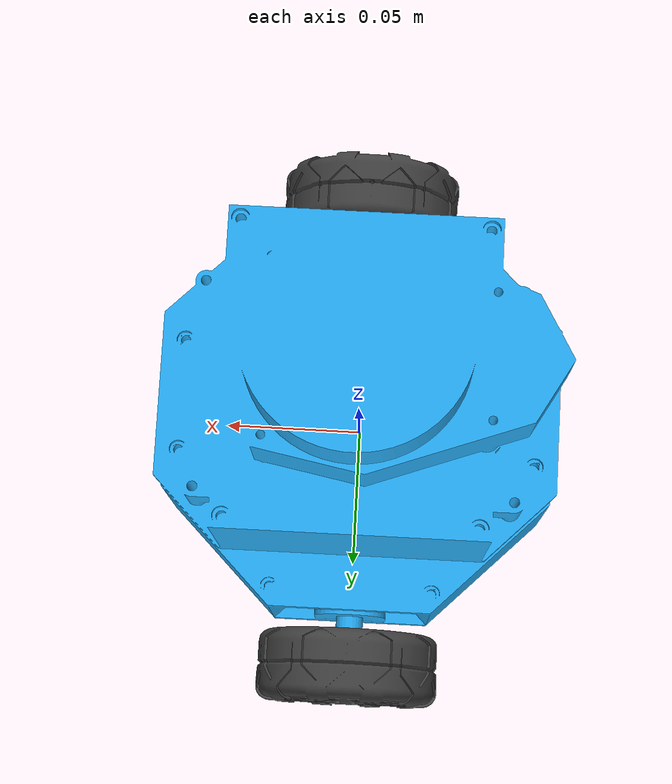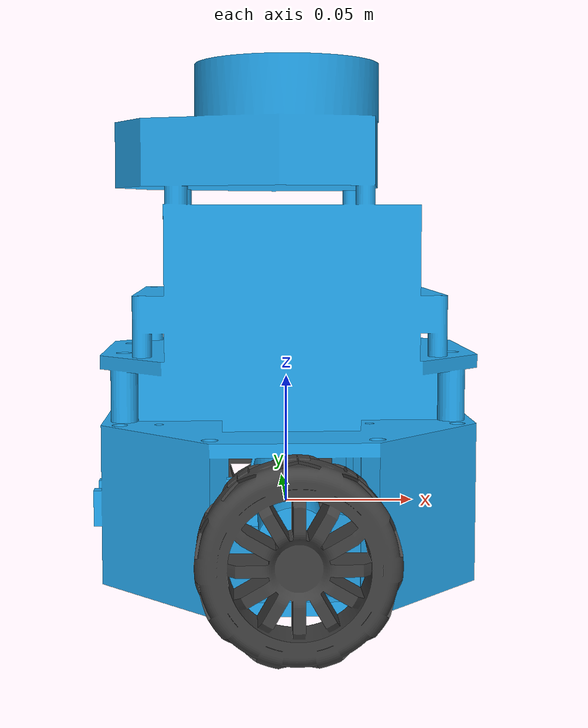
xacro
<?xml version="1.0"?>
<robot name="robot" xmlns:xacro="http://www.ros.org/wiki/xacro">

  <!-- ===== 치수 (m). CAD에서 계산한 값이다. 실측으로 바뀌면 robot_base.yaml과 함께 고친다. ===== -->
  <xacro:property name="wheel_radius" value="0.0335"/>       <!-- 바퀴 지름 67mm -->
  <xacro:property name="wheel_width" value="0.026"/>
  <xacro:property name="wheel_separation" value="0.178"/>    <!-- 두 바퀴 중심 사이 -->
  <xacro:property name="caster_offset_x" value="0.060"/>     <!-- 바퀴 축에서 앞/뒤 캐스터 중심까지 -->
  <xacro:property name="caster_radius" value="0.0073"/>
  <!-- 구동 바퀴가 항상 바닥을 잡도록 캐스터 충돌체를 바닥에서 띄운다 (실물에도 권장하는 설계) -->
  <xacro:property name="caster_clearance" value="0.001"/>
  <!-- RPLIDAR A1 헤드 중간 높이. 실물 스캔 높이와 0° 방향은 하드웨어 확인 때 맞춘다. -->
  <xacro:property name="laser_z" value="0.160"/>
  <xacro:property name="laser_yaw" value="0.0"/>
  <xacro:property name="cad_axle_height" value="0.02475"/>   <!-- CAD 원점에서 바퀴 축까지 -->

  <!-- 충돌용 차체 상자: CAD 바닥판 아래면부터 LiDAR 꼭대기까지 -->
  <xacro:property name="body_size_x" value="0.140"/>
  <xacro:property name="body_size_y" value="0.140"/>          <!-- 바퀴 안쪽 면(±0.076)보다 좁게 -->
  <xacro:property name="body_bottom_z" value="-0.02475"/>
  <xacro:property name="body_top_z" value="0.1707"/>

  <!-- 질량 (CAD가 모든 부품을 ABS로 보고 계산한 값). 실물 무게를 재면 교체한다. -->
  <xacro:property name="base_mass" value="0.9249"/>
  <xacro:property name="wheel_mass" value="0.052668"/>
  <xacro:property name="small_mass" value="0.001"/>          <!-- 캐스터, laser 링크용 -->

  <xacro:property name="mesh_dir" value="package://robot_description/meshes"/>

  <!-- 바퀴 충돌체 모양: cylinder(실제 모양, 기본) 또는 sphere. 시뮬레이션은 sphere를 쓴다 (robot_gazebo 참고). -->
  <xacro:arg name="wheel_collision" default="cylinder"/>

  <material name="body_blue">
    <color rgba="0.145 0.671 0.953 1.0"/>
  </material>
  <material name="wheel_gray">
    <color rgba="0.25 0.25 0.25 1.0"/>
  </material>

  <!-- 고정 링크용 아주 작은 관성 (Gazebo가 질량 없는 링크를 버리지 않게) -->
  <xacro:macro name="small_inertial">
    <inertial>
      <mass value="${small_mass}"/>
      <inertia ixx="1e-7" ixy="0" ixz="0" iyy="1e-7" iyz="0" izz="1e-7"/>
    </inertial>
  </xacro:macro>

  <!-- ===== base_link ===== -->
  <link name="base_link">
    <visual>
      <origin xyz="0 0 ${-cad_axle_height}" rpy="0 0 ${pi/2}"/>
      <geometry>
        <mesh filename="${mesh_dir}/base_link.dae"/>
      </geometry>
      <material name="body_blue"/>
    </visual>
    <collision>
      <origin xyz="0 0 ${(body_bottom_z + body_top_z) / 2}"/>
      <geometry>
        <box size="${body_size_x} ${body_size_y} ${body_top_z - body_bottom_z}"/>
      </geometry>
    </collision>
    <inertial>
      <!-- CAD 무게중심과 관성을 ROS 프레임으로 회전한 값 -->
      <origin xyz="-0.001963 0 0.068628"/>
      <mass value="${base_mass}"/>
      <inertia ixx="4.193801e-03" ixy="-2.749865e-08" ixz="7.799567e-05"
               iyy="4.182968e-03" iyz="6.145221e-08" izz="1.939995e-03"/>
    </inertial>
  </link>

  <!-- ===== 구동 바퀴: 회전축 +y, 양수 회전 = 전진 ===== -->
  <xacro:macro name="drive_wheel" params="side reflect visual_xyz visual_rpy">
    <link name="${side}_wheel">
      <visual>
        <!-- CAD 바퀴 메시를 바퀴 중심 프레임으로 옮기는 값 (CAD export에서 계산) -->
        <origin xyz="${visual_xyz}" rpy="${visual_rpy}"/>
        <geometry>
          <mesh filename="${mesh_dir}/${side}_wheel.dae"/>
        </geometry>
        <material name="wheel_gray"/>
      </visual>
      <collision>
        <xacro:if value="${'$(arg wheel_collision)' == 'sphere'}">
          <geometry>
            <sphere radius="${wheel_radius}"/>
          </geometry>
        </xacro:if>
        <xacro:unless value="${'$(arg wheel_collision)' == 'sphere'}">
          <origin xyz="0 0 0" rpy="${pi/2} 0 0"/>
          <geometry>
            <cylinder radius="${wheel_radius}" length="${wheel_width}"/>
          </geometry>
        </xacro:unless>
      </collision>
      <inertial>
        <mass value="${wheel_mass}"/>
        <!-- CAD 값: 회전축(y) 방향 3.51e-5, 나머지 1.98e-5 -->
        <inertia ixx="1.979552e-05" ixy="0" ixz="0" iyy="3.510455e-05" iyz="0" izz="1.979552e-05"/>
      </inertial>
    </link>
    <joint name="${side}_wheel_joint" type="continuous">
      <parent link="base_link"/>
      <child link="${side}_wheel"/>
      <origin xyz="0 ${reflect * wheel_separation / 2} 0" rpy="0 0 0"/>
      <axis xyz="0 1 0"/>
    </joint>
  </xacro:macro>

  <xacro:drive_wheel side="left" reflect="1" visual_xyz="0 -0.013 0" visual_rpy="${-pi} 0 ${pi/2}"/>
  <xacro:drive_wheel side="right" reflect="-1" visual_xyz="0 0.013 0" visual_rpy="0 0 ${-pi/2}"/>

  <!-- ===== 볼 캐스터 (앞, 뒤). 모양은 base_link 메시에 들어 있으므로 충돌체만 둔다. ===== -->
  <xacro:macro name="caster" params="name x">
    <link name="${name}">
      <collision>
        <geometry>
          <sphere radius="${caster_radius}"/>
        </geometry>
      </collision>
      <xacro:small_inertial/>
    </link>
    <joint name="${name}_joint" type="fixed">
      <parent link="base_link"/>
      <child link="${name}"/>
      <origin xyz="${x} 0 ${-wheel_radius + caster_radius + caster_clearance}"/>
    </joint>
  </xacro:macro>

  <xacro:caster name="front_caster" x="${caster_offset_x}"/>
  <xacro:caster name="rear_caster" x="${-caster_offset_x}"/>

  <!-- ===== LiDAR 스캔 프레임. 모양은 base_link 메시에 들어 있다. ===== -->
  <link name="laser">
    <xacro:small_inertial/>
  </link>
  <joint name="laser_joint" type="fixed">
    <parent link="base_link"/>
    <child link="laser"/>
    <origin xyz="0 0 ${laser_z}" rpy="0 0 ${laser_yaw}"/>
  </joint>

</robot>
